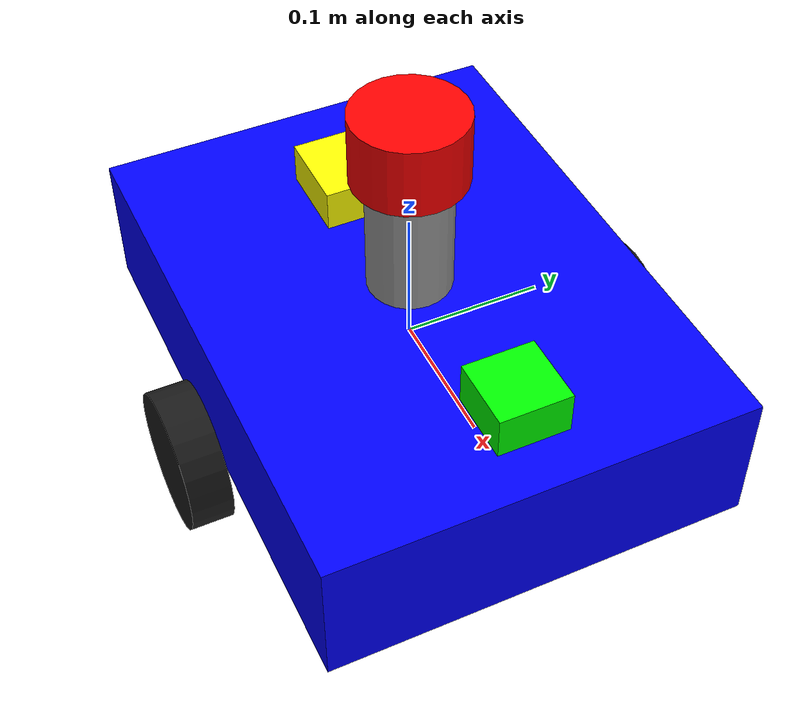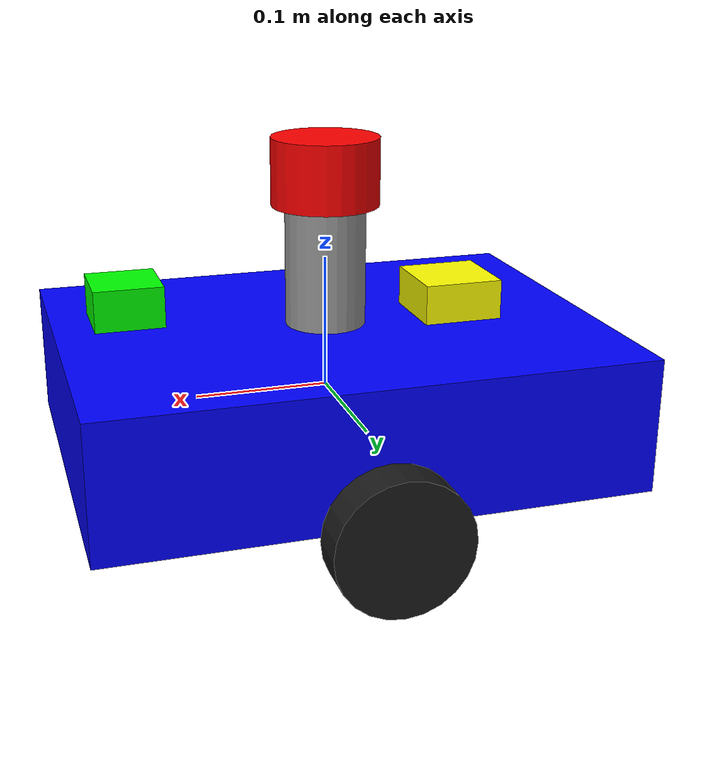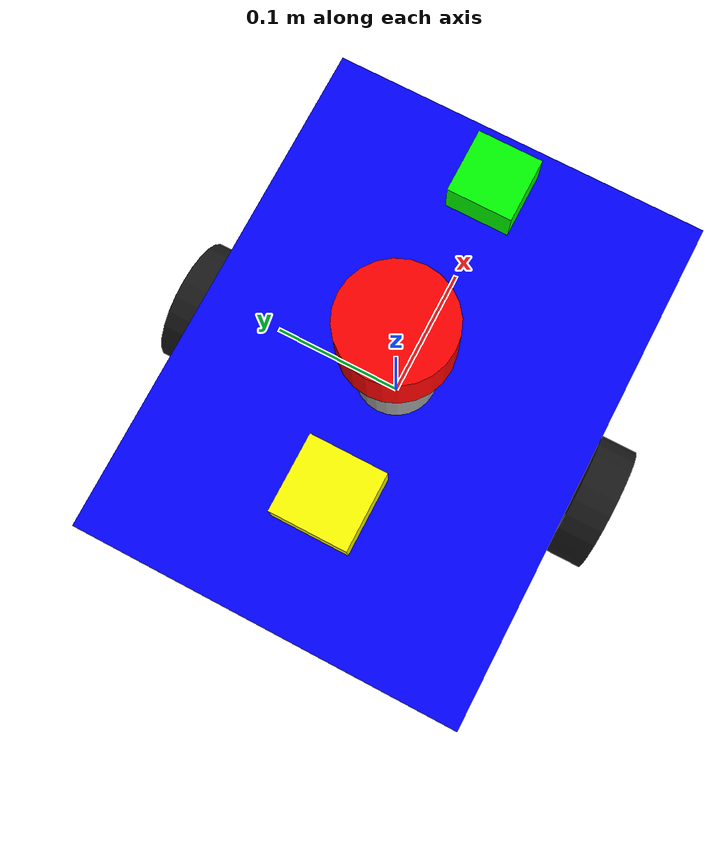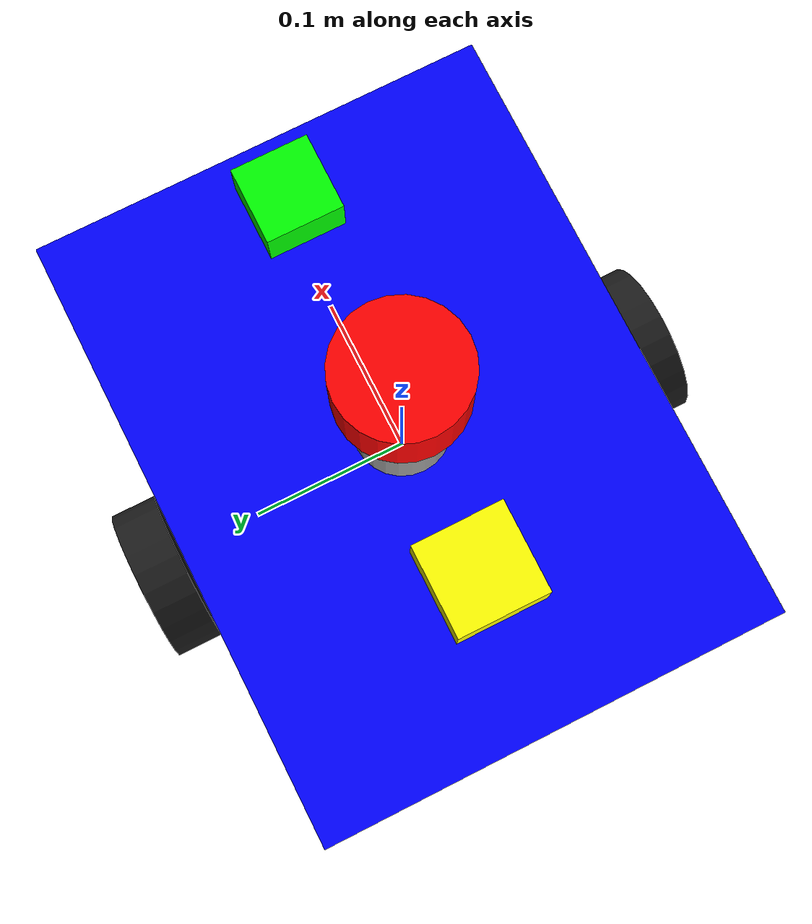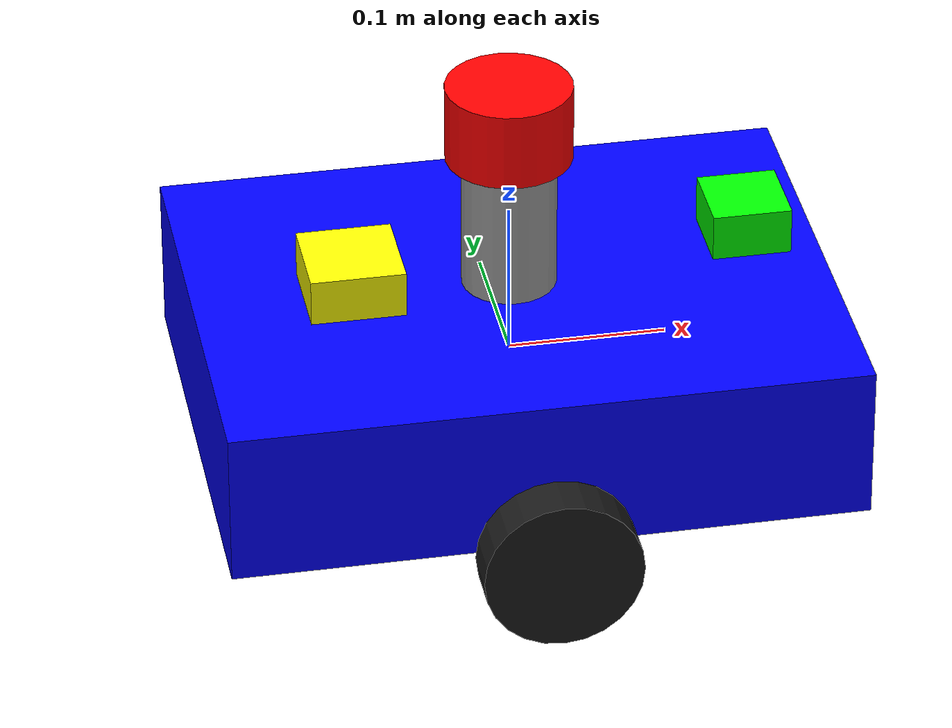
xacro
<?xml version="1.0"?>
<robot name="simple_mobile_robot"
       xmlns:xacro="http://www.ros.org/wiki/xacro">

 <xacro:property name="base_length" value="0.4"/>
 <xacro:property name="base_width" value="0.3"/>
 <xacro:property name="base_height" value="0.1"/>

 <xacro:property name="wheel_radius" value="0.05"/>
 <xacro:property name="wheel_width" value="0.03"/>

 <xacro:property name="lidar_radius" value="0.04"/>
 <xacro:property name="lidar_height" value="0.05"/>

 <xacro:property name="camera_size_x" value="0.05"/>
 <xacro:property name="camera_size_y" value="0.05"/>
 <xacro:property name="camera_size_z" value="0.03"/>

 <xacro:property name="imu_size_x" value="0.06"/>
 <xacro:property name="imu_size_y" value="0.06"/>
 <xacro:property name="imu_size_z" value="0.04"/>

 <xacro:property name="caster_radius" value="0.03"/>

 <link name="base_link">
  <visual>
   <geometry>
    <box size="${base_length} ${base_width} ${base_height}"/>
   </geometry>

   <material name="blue">
     <color rgba="0 0 1 1"/>

   </material>
  </visual>

  <inertial>

   <origin xyz="0 0 -0.015"/>

   <mass value="8.0"/>

   <inertia
      ixx="0.1"
      ixy="0"
      ixz="0"
      iyy="0.1"
      iyz="0"
      izz="0.1"/>

  </inertial>
   <collision>
    <geometry>
     <box size="${base_length} ${base_width} ${base_height}"/>
    </geometry>
  </collision>
 </link>

 <link name="left_wheel">
  <visual>
   <geometry>
    <cylinder radius="${wheel_radius}" length="${wheel_width}"/>
   </geometry>
   <material name="black">
    <color rgba="0.1 0.1 0.1 1"/>
   </material>
  </visual>

  <inertial>

   <origin xyz="0 0 0"/>

   <mass value="0.5"/>

   <inertia
      ixx="0.145833"
      ixy="0"
      ixz="0"
      iyy="0.145833"
      iyz="0"
      izz="0.125"/>

  </inertial>

  <collision>
   <geometry>
    <cylinder radius="${wheel_radius}" length="${wheel_width}"/>
   </geometry>
  </collision>
 </link>

 <joint name="left_wheel_joint" type="continuous">
  <parent link="base_link"/>
  <child link="left_wheel"/>
  <origin xyz="0 0.17 -0.05" rpy="1.5708 0 0"/>
  <axis xyz="0 1 0"/>
  <dynamics damping="2.0"/>
 </joint>

 <link name="right_wheel">
  <visual>
   <geometry>
    <cylinder radius="${wheel_radius}" length="${wheel_width}"/>
   </geometry>
   <material name="black">
    <color rgba="0.1 0.1 0.1 1"/>
   </material>
  </visual>

  <inertial>

   <origin xyz="0 0 0"/>

   <mass value="0.5"/>

   <inertia
      ixx="0.145833"
      ixy="0"
      ixz="0"
      iyy="0.145833"
      iyz="0"
      izz="0.125"/>

  </inertial>

  <collision>
   <geometry>
    <cylinder radius="${wheel_radius}" length="${wheel_width}"/>
   </geometry>
  </collision>
 </link>

 <joint name="right_wheel_joint" type="continuous">
  <parent link="base_link"/>
  <child link="right_wheel"/>
  <origin xyz="0 -0.17 -0.05" rpy="1.5708 0 0"/>
  <axis xyz="0 1 0"/>
  <dynamics damping="2.0"/>
 </joint>

 <link name="lidar_mast">

  <visual>
    <geometry>
      <cylinder radius="0.03" length="0.09"/>
    </geometry>

    <material name="gray">
      <color rgba="0.6 0.6 0.6 1"/>
    </material>
  </visual>

  <collision>
    <geometry>
      <cylinder radius="0.008" length="0.09"/>
    </geometry>
  </collision>

  <inertial>
    <mass value="0.05"/>

    <origin xyz="0 0 0"/>

    <inertia
      ixx="0.00001"
      ixy="0"
      ixz="0"
      iyy="0.00001"
      iyz="0"
      izz="0.00001"/>
  </inertial>

</link>

<joint name="lidar_mast_joint" type="fixed">
  <parent link="base_link"/>
  <child link="lidar_mast"/>

  <!-- Mast center -->
  <origin xyz="0 0 0.095" rpy="0 0 0"/>
</joint>

 <link name="lidar_link">
  <visual>
   <geometry>
    <cylinder radius="${lidar_radius}" length="${lidar_height}"/>
   </geometry>

   <material name="red">
    <color rgba="1 0 0 1"/>
   </material>
  </visual>

  <inertial>
   <mass value="0.2"/>
   <origin xyz="0 0 0"/>
   <inertia
      ixx="0.0001"
      ixy="0"
      ixz="0"
      iyy="0.0001"
      iyz="0"
      izz="0.0001"/>
  </inertial>

  <collision>
   <geometry>
    <cylinder radius="${lidar_radius}" length="${lidar_height}"/>
   </geometry>
  </collision>

 </link>

<joint name="lidar_joint" type="fixed">
  <parent link="lidar_mast"/>
  <child link="lidar_link"/>

  <!-- LiDAR sits on top of the mast -->
  <origin xyz="0 0 0.07" rpy="0 0 0"/>
</joint>

 <link name="depth_camera_link">
  <visual>
   <geometry>
    <box size="${camera_size_x} ${camera_size_y} ${camera_size_z}"/>
   </geometry>

   <material name="green">
    <color rgba="0 1 0 1"/>
   </material>
  </visual>

  <inertial>
   <mass value="0.1"/>
   <origin xyz="0 0 0"/>

   <inertia
      ixx="0.0001"
      ixy="0"
      ixz="0"
      iyy="0.0001"
      iyz="0"
      izz="0.0001"/>
  </inertial>

  <collision>
   <geometry>
    <box size="${camera_size_x} ${camera_size_y} ${camera_size_z}"/>
   </geometry>
  </collision>
 </link>

 <joint name="depth_camera_joint" type="fixed">
  <parent link="base_link"/>
  <child link="depth_camera_link"/>
  <origin xyz="0.15 0 0.08" rpy="0 0 0"/>
 </joint>

 <!-- Optical frame -->
 <link name="depth_camera_optical_frame"/>

 <joint name="depth_camera_optical_joint" type="fixed">
    <parent link="depth_camera_link"/>
    <child link="depth_camera_optical_frame"/>
    <origin xyz="0 0 0"
            rpy="-1.5708 0 -1.5708"/>
 </joint>

 <link name="imu_link">

  <visual>
    <geometry>
      <box size="${imu_size_x} ${imu_size_y} ${imu_size_z}"/>
    </geometry>

    <material name="yellow">
      <color rgba="1 1 0 1"/>
    </material>
  </visual>

  <collision>
    <geometry>
      <box size="${imu_size_x} ${imu_size_y} ${imu_size_z}"/>
    </geometry>
  </collision>

  <inertial>

    <mass value="0.1"/>

    <origin xyz="0 0 0"/>

    <inertia
      ixx="0.000166667"
      ixy="0"
      ixz="0"
      iyy="0.000166667"
      iyz="0"
      izz="0.000166667"/>

  </inertial>

 </link>

 <joint name="imu_joint" type="fixed">
  <parent link="base_link"/>
  <child link="imu_link"/>
  <origin xyz="-0.10 0 0.06" rpy="0 0 0"/>
 </joint>

 <link name="caster_swivel">

  <visual>
    <geometry>
      <cylinder radius="0.015" length="0.03"/>
    </geometry>

    <material name="gray">
      <color rgba="0.5 0.5 0.5 1"/>
    </material>
  </visual>

  <collision>
    <geometry>
      <cylinder radius="0.015" length="0.03"/>
    </geometry>
  </collision>

  <inertial>
    <mass value="0.05"/>

    <origin xyz="0 0 0"/>

    <inertia
      ixx="0.00002"
      ixy="0"
      ixz="0"
      iyy="0.00002"
      iyz="0"
      izz="0.00002"/>
  </inertial>

 </link>

<joint name="caster_swivel_joint" type="continuous">
    <parent link="base_link"/>
    <child link="caster_swivel"/>
    <origin xyz="-0.15 0 -0.045"/>
    <axis xyz="0 0 1"/>
    <dynamics damping="0.05" friction="0.0"/>
</joint>

 <link name="caster_wheel">

  <visual>

    <geometry>
      <cylinder
     radius="0.025"
     length="0.015"/>
    </geometry>

    <material name="black">
      <color rgba="0.2 0.2 0.2 1"/>
    </material>

  </visual>

  <collision>

    <geometry>
      <cylinder
     radius="0.025"
     length="0.015"/>
    </geometry>

  </collision>

  <inertial>

    <mass value="0.15"/>

    <origin xyz="0 0 0"/>

    <inertia
      ixx="0.0001"
      ixy="0"
      ixz="0"
      iyy="0.0001"
      iyz="0"
      izz="0.0001"/>

  </inertial>

 </link>

 <joint name="caster_wheel_joint"
       type="continuous">

    <parent link="caster_swivel"/>

    <child link="caster_wheel"/>

    <origin
     xyz="0 0 -0.03"
     rpy="1.5708 0 0"/>

    <axis xyz="0 1 0"/>
    <dynamics damping="0.5"/>

 </joint>

 <!--adding ros2 control -->
 <ros2_control name="GazeboSimSystem" type="system">
  <hardware>
   <plugin>gz_ros2_control/GazeboSimSystem</plugin>

  <!--A plugin is like a software module that adds functionality.
  #Gazebo doesn't automatically understand ROS motor commands.
  #The plugin acts as a translator.
  #ROS -> plugin -> Gazebo -->

  </hardware>

  <joint name="left_wheel_joint">
   <command_interface name="velocity">
    <param name="min">-20</param>
    <param name="max">20</param>
   </command_interface>  <!--command  tell ros to control joint by giving velocity speed-->

   <state_interface name="position"/>  <!--feedback , it tell ros that u can read current position of joint-->
   <state_interface name="velocity"/>  <!--feedback = reading the current wheel speed-->
  </joint>

  <joint name="right_wheel_joint">
   <command_interface name="velocity">
    <param name="min">-20</param>
    <param name="max">20</param>
   </command_interface>
   <state_interface name="position"/>
   <state_interface name="velocity"/>
  </joint>

 </ros2_control>

 <!--adding the Gazebo plugin -->

 <gazebo>

  <plugin
      filename="gz_ros2_control-system"
      name="gz_ros2_control::GazeboSimROS2ControlPlugin">

    <ros>
      <namespace></namespace>
    </ros>

    <parameters>
      /media/zbook/Data/ros2_ws/install/simple_mobile_robot/share/simple_mobile_robot/config/controllers.yaml
    </parameters>

   </plugin>

 </gazebo>

<gazebo reference="lidar_link">

  <sensor name="lidar_sensor" type="gpu_lidar">

    <always_on>true</always_on>

    <update_rate>10</update_rate>

    <visualize>true</visualize>

    <topic>scan</topic>

    <gz_frame_id>lidar_link</gz_frame_id>

    <lidar>

      <scan>

        <horizontal>

          <samples>720</samples>

          <resolution>1</resolution>

          <min_angle>-3.14159</min_angle>

          <max_angle>3.14159</max_angle>

        </horizontal>

      </scan>

      <range>

        <min>0.10</min>

        <max>10.0</max>

        <resolution>0.01</resolution>

      </range>

    </lidar>

  </sensor>

</gazebo>

<gazebo reference="base_link">
  <sensor name="imu_sensor" type="imu">
    <always_on>true</always_on>
    <update_rate>100</update_rate>
    <visualize>true</visualize>
    <topic>/imu</topic>
    <enable_metrics>true</enable_metrics>
  </sensor>
  <kp>1000000</kp>
  <kd>100</kd>
</gazebo>

<gazebo reference="depth_camera_link">

  <sensor name="camera" type="depth_camera">

    <always_on>true</always_on>
    <update_rate>30</update_rate>

    <visualize>true</visualize>

    <topic>camera</topic>

    <gz_frame_id>depth_camera_optical_frame</gz_frame_id>

    <camera>

      <horizontal_fov>1.047</horizontal_fov>

      <image>
        <width>640</width>
        <height>480</height>
        <format>R8G8B8</format>
      </image>

      <clip>
        <near>0.1</near>
        <far>10.0</far>
      </clip>

    </camera>

  </sensor>

</gazebo>

<gazebo reference="left_wheel">

  <mu1>10.0</mu1>
  <mu2>10.0</mu2>

  <kp>100000</kp>
  <kd>10</kd>

  <fdir1>0 1 0</fdir1>

</gazebo>

<gazebo reference="right_wheel">

  <mu1>10.0</mu1>
  <mu2>10.0</mu2>

  <kp>100000</kp>
  <kd>10</kd>

  <fdir1>0 1 0</fdir1>

</gazebo>

<gazebo reference="caster_wheel">
    <mu1>0.01</mu1>
    <mu2>0.01</mu2>
    <kp>100000</kp>
    <kd>10</kd>
</gazebo>

</robot>
